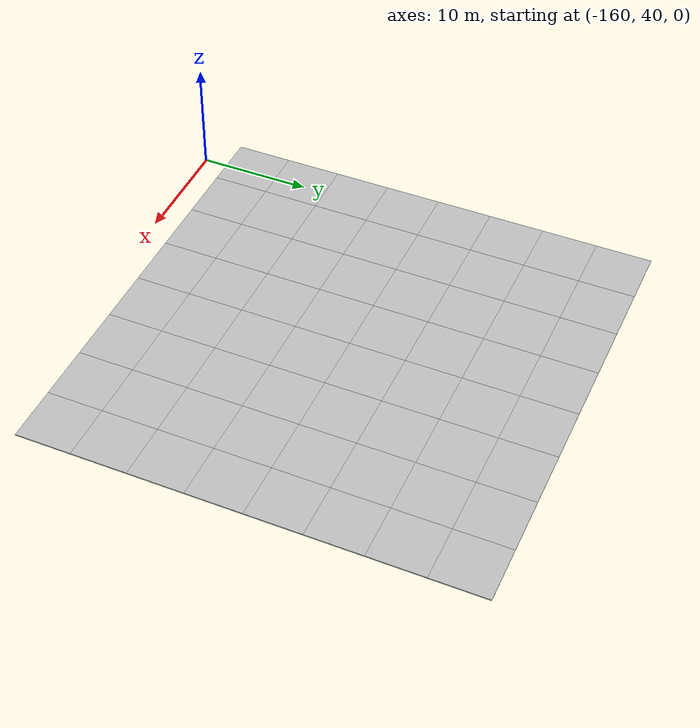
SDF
<sdf version="1.7">
 <world name="default">
  <model name="mud_plane_80x80_3">
   <model name="mud_plane_40x40_1">
    <model name="mud_plane_20x20">
     <model name="mud_plane">
      <static>1</static>
      <link name="link">
       <collision name="collision"><geometry><box><size>10 10 0.1</size></box></geometry></collision>
       <visual name="visual_1">
        <pose>-2.5 2.5 -0.05 0 -0 0</pose>
        <cast_shadows>0</cast_shadows>
        <geometry><box><size>5 5 0.1</size></box></geometry>
        <material>
         <script>
          <uri>model://mud_plane/materials/scripts</uri>
          <uri>model://mud_plane/materials/textures</uri>
          <name>vrc/mud</name>
         </script>
        </material>
       </visual>
       <visual name="visual_2">
        <pose>2.5 2.5 -0.05 0 -0 0</pose>
        <cast_shadows>0</cast_shadows>
        <geometry><box><size>5 5 0.1</size></box></geometry>
        <material>
         <script>
          <uri>model://mud_plane/materials/scripts</uri>
          <uri>model://mud_plane/materials/textures</uri>
          <name>vrc/mud</name>
         </script>
        </material>
       </visual>
       <visual name="visual_3">
        <pose>2.5 -2.5 -0.05 0 -0 0</pose>
        <cast_shadows>0</cast_shadows>
        <geometry><box><size>5 5 0.1</size></box></geometry>
        <material>
         <script>
          <uri>model://mud_plane/materials/scripts</uri>
          <uri>model://mud_plane/materials/textures</uri>
          <name>vrc/mud</name>
         </script>
        </material>
       </visual>
       <visual name="visual_4">
        <pose>-2.5 -2.5 -0.05 0 -0 0</pose>
        <cast_shadows>0</cast_shadows>
        <geometry><box><size>5 5 0.1</size></box></geometry>
        <material>
         <script>
          <uri>model://mud_plane/materials/scripts</uri>
          <uri>model://mud_plane/materials/textures</uri>
          <name>vrc/mud</name>
         </script>
        </material>
       </visual>
      </link>
      <pose>-4.99986 -4.99991 0 0 -0 0</pose>
     </model>
     <model name="mud_plane_0">
      <static>1</static>
      <link name="link">
       <collision name="collision"><geometry><box><size>10 10 0.1</size></box></geometry></collision>
       <visual name="visual_1">
        <pose>-2.5 2.5 -0.05 0 -0 0</pose>
        <cast_shadows>0</cast_shadows>
        <geometry><box><size>5 5 0.1</size></box></geometry>
        <material>
         <script>
          <uri>model://mud_plane/materials/scripts</uri>
          <uri>model://mud_plane/materials/textures</uri>
          <name>vrc/mud</name>
         </script>
        </material>
       </visual>
       <visual name="visual_2">
        <pose>2.5 2.5 -0.05 0 -0 0</pose>
        <cast_shadows>0</cast_shadows>
        <geometry><box><size>5 5 0.1</size></box></geometry>
        <material>
         <script>
          <uri>model://mud_plane/materials/scripts</uri>
          <uri>model://mud_plane/materials/textures</uri>
          <name>vrc/mud</name>
         </script>
        </material>
       </visual>
       <visual name="visual_3">
        <pose>2.5 -2.5 -0.05 0 -0 0</pose>
        <cast_shadows>0</cast_shadows>
        <geometry><box><size>5 5 0.1</size></box></geometry>
        <material>
         <script>
          <uri>model://mud_plane/materials/scripts</uri>
          <uri>model://mud_plane/materials/textures</uri>
          <name>vrc/mud</name>
         </script>
        </material>
       </visual>
       <visual name="visual_4">
        <pose>-2.5 -2.5 -0.05 0 -0 0</pose>
        <cast_shadows>0</cast_shadows>
        <geometry><box><size>5 5 0.1</size></box></geometry>
        <material>
         <script>
          <uri>model://mud_plane/materials/scripts</uri>
          <uri>model://mud_plane/materials/textures</uri>
          <name>vrc/mud</name>
         </script>
        </material>
       </visual>
      </link>
      <pose>-4.99946 4.99954 0 0 -0 0</pose>
     </model>
     <model name="mud_plane_1">
      <static>1</static>
      <link name="link">
       <collision name="collision"><geometry><box><size>10 10 0.1</size></box></geometry></collision>
       <visual name="visual_1">
        <pose>-2.5 2.5 -0.05 0 -0 0</pose>
        <cast_shadows>0</cast_shadows>
        <geometry><box><size>5 5 0.1</size></box></geometry>
        <material>
         <script>
          <uri>model://mud_plane/materials/scripts</uri>
          <uri>model://mud_plane/materials/textures</uri>
          <name>vrc/mud</name>
         </script>
        </material>
       </visual>
       <visual name="visual_2">
        <pose>2.5 2.5 -0.05 0 -0 0</pose>
        <cast_shadows>0</cast_shadows>
        <geometry><box><size>5 5 0.1</size></box></geometry>
        <material>
         <script>
          <uri>model://mud_plane/materials/scripts</uri>
          <uri>model://mud_plane/materials/textures</uri>
          <name>vrc/mud</name>
         </script>
        </material>
       </visual>
       <visual name="visual_3">
        <pose>2.5 -2.5 -0.05 0 -0 0</pose>
        <cast_shadows>0</cast_shadows>
        <geometry><box><size>5 5 0.1</size></box></geometry>
        <material>
         <script>
          <uri>model://mud_plane/materials/scripts</uri>
          <uri>model://mud_plane/materials/textures</uri>
          <name>vrc/mud</name>
         </script>
        </material>
       </visual>
       <visual name="visual_4">
        <pose>-2.5 -2.5 -0.05 0 -0 0</pose>
        <cast_shadows>0</cast_shadows>
        <geometry><box><size>5 5 0.1</size></box></geometry>
        <material>
         <script>
          <uri>model://mud_plane/materials/scripts</uri>
          <uri>model://mud_plane/materials/textures</uri>
          <name>vrc/mud</name>
         </script>
        </material>
       </visual>
      </link>
      <pose>4.99964 -4.99949 0 0 -0 0</pose>
     </model>
     <model name="mud_plane_2">
      <static>1</static>
      <link name="link">
       <collision name="collision"><geometry><box><size>10 10 0.1</size></box></geometry></collision>
       <visual name="visual_1">
        <pose>-2.5 2.5 -0.05 0 -0 0</pose>
        <cast_shadows>0</cast_shadows>
        <geometry><box><size>5 5 0.1</size></box></geometry>
        <material>
         <script>
          <uri>model://mud_plane/materials/scripts</uri>
          <uri>model://mud_plane/materials/textures</uri>
          <name>vrc/mud</name>
         </script>
        </material>
       </visual>
       <visual name="visual_2">
        <pose>2.5 2.5 -0.05 0 -0 0</pose>
        <cast_shadows>0</cast_shadows>
        <geometry><box><size>5 5 0.1</size></box></geometry>
        <material>
         <script>
          <uri>model://mud_plane/materials/scripts</uri>
          <uri>model://mud_plane/materials/textures</uri>
          <name>vrc/mud</name>
         </script>
        </material>
       </visual>
       <visual name="visual_3">
        <pose>2.5 -2.5 -0.05 0 -0 0</pose>
        <cast_shadows>0</cast_shadows>
        <geometry><box><size>5 5 0.1</size></box></geometry>
        <material>
         <script>
          <uri>model://mud_plane/materials/scripts</uri>
          <uri>model://mud_plane/materials/textures</uri>
          <name>vrc/mud</name>
         </script>
        </material>
       </visual>
       <visual name="visual_4">
        <pose>-2.5 -2.5 -0.05 0 -0 0</pose>
        <cast_shadows>0</cast_shadows>
        <geometry><box><size>5 5 0.1</size></box></geometry>
        <material>
         <script>
          <uri>model://mud_plane/materials/scripts</uri>
          <uri>model://mud_plane/materials/textures</uri>
          <name>vrc/mud</name>
         </script>
        </material>
       </visual>
      </link>
      <pose>4.99967 4.99986 0 0 -0 0</pose>
     </model>
     <static>0</static>
     <pose>-9.99895 9.99843 0 0 -0 0</pose>
    </model>
    <model name="mud_plane_20x20_0">
     <model name="mud_plane">
      <static>1</static>
      <link name="link">
       <collision name="collision"><geometry><box><size>10 10 0.1</size></box></geometry></collision>
       <visual name="visual_1">
        <pose>-2.5 2.5 -0.05 0 -0 0</pose>
        <cast_shadows>0</cast_shadows>
        <geometry><box><size>5 5 0.1</size></box></geometry>
        <material>
         <script>
          <uri>model://mud_plane/materials/scripts</uri>
          <uri>model://mud_plane/materials/textures</uri>
          <name>vrc/mud</name>
         </script>
        </material>
       </visual>
       <visual name="visual_2">
        <pose>2.5 2.5 -0.05 0 -0 0</pose>
        <cast_shadows>0</cast_shadows>
        <geometry><box><size>5 5 0.1</size></box></geometry>
        <material>
         <script>
          <uri>model://mud_plane/materials/scripts</uri>
          <uri>model://mud_plane/materials/textures</uri>
          <name>vrc/mud</name>
         </script>
        </material>
       </visual>
       <visual name="visual_3">
        <pose>2.5 -2.5 -0.05 0 -0 0</pose>
        <cast_shadows>0</cast_shadows>
        <geometry><box><size>5 5 0.1</size></box></geometry>
        <material>
         <script>
          <uri>model://mud_plane/materials/scripts</uri>
          <uri>model://mud_plane/materials/textures</uri>
          <name>vrc/mud</name>
         </script>
        </material>
       </visual>
       <visual name="visual_4">
        <pose>-2.5 -2.5 -0.05 0 -0 0</pose>
        <cast_shadows>0</cast_shadows>
        <geometry><box><size>5 5 0.1</size></box></geometry>
        <material>
         <script>
          <uri>model://mud_plane/materials/scripts</uri>
          <uri>model://mud_plane/materials/textures</uri>
          <name>vrc/mud</name>
         </script>
        </material>
       </visual>
      </link>
      <pose>-4.99986 -4.99991 0 0 -0 0</pose>
     </model>
     <model name="mud_plane_0">
      <static>1</static>
      <link name="link">
       <collision name="collision"><geometry><box><size>10 10 0.1</size></box></geometry></collision>
       <visual name="visual_1">
        <pose>-2.5 2.5 -0.05 0 -0 0</pose>
        <cast_shadows>0</cast_shadows>
        <geometry><box><size>5 5 0.1</size></box></geometry>
        <material>
         <script>
          <uri>model://mud_plane/materials/scripts</uri>
          <uri>model://mud_plane/materials/textures</uri>
          <name>vrc/mud</name>
         </script>
        </material>
       </visual>
       <visual name="visual_2">
        <pose>2.5 2.5 -0.05 0 -0 0</pose>
        <cast_shadows>0</cast_shadows>
        <geometry><box><size>5 5 0.1</size></box></geometry>
        <material>
         <script>
          <uri>model://mud_plane/materials/scripts</uri>
          <uri>model://mud_plane/materials/textures</uri>
          <name>vrc/mud</name>
         </script>
        </material>
       </visual>
       <visual name="visual_3">
        <pose>2.5 -2.5 -0.05 0 -0 0</pose>
        <cast_shadows>0</cast_shadows>
        <geometry><box><size>5 5 0.1</size></box></geometry>
        <material>
         <script>
          <uri>model://mud_plane/materials/scripts</uri>
          <uri>model://mud_plane/materials/textures</uri>
          <name>vrc/mud</name>
         </script>
        </material>
       </visual>
       <visual name="visual_4">
        <pose>-2.5 -2.5 -0.05 0 -0 0</pose>
        <cast_shadows>0</cast_shadows>
        <geometry><box><size>5 5 0.1</size></box></geometry>
        <material>
         <script>
          <uri>model://mud_plane/materials/scripts</uri>
          <uri>model://mud_plane/materials/textures</uri>
          <name>vrc/mud</name>
         </script>
        </material>
       </visual>
      </link>
      <pose>-4.99946 4.99954 0 0 -0 0</pose>
     </model>
     <model name="mud_plane_1">
      <static>1</static>
      <link name="link">
       <collision name="collision"><geometry><box><size>10 10 0.1</size></box></geometry></collision>
       <visual name="visual_1">
        <pose>-2.5 2.5 -0.05 0 -0 0</pose>
        <cast_shadows>0</cast_shadows>
        <geometry><box><size>5 5 0.1</size></box></geometry>
        <material>
         <script>
          <uri>model://mud_plane/materials/scripts</uri>
          <uri>model://mud_plane/materials/textures</uri>
          <name>vrc/mud</name>
         </script>
        </material>
       </visual>
       <visual name="visual_2">
        <pose>2.5 2.5 -0.05 0 -0 0</pose>
        <cast_shadows>0</cast_shadows>
        <geometry><box><size>5 5 0.1</size></box></geometry>
        <material>
         <script>
          <uri>model://mud_plane/materials/scripts</uri>
          <uri>model://mud_plane/materials/textures</uri>
          <name>vrc/mud</name>
         </script>
        </material>
       </visual>
       <visual name="visual_3">
        <pose>2.5 -2.5 -0.05 0 -0 0</pose>
        <cast_shadows>0</cast_shadows>
        <geometry><box><size>5 5 0.1</size></box></geometry>
        <material>
         <script>
          <uri>model://mud_plane/materials/scripts</uri>
          <uri>model://mud_plane/materials/textures</uri>
          <name>vrc/mud</name>
         </script>
        </material>
       </visual>
       <visual name="visual_4">
        <pose>-2.5 -2.5 -0.05 0 -0 0</pose>
        <cast_shadows>0</cast_shadows>
        <geometry><box><size>5 5 0.1</size></box></geometry>
        <material>
         <script>
          <uri>model://mud_plane/materials/scripts</uri>
          <uri>model://mud_plane/materials/textures</uri>
          <name>vrc/mud</name>
         </script>
        </material>
       </visual>
      </link>
      <pose>4.99964 -4.99949 0 0 -0 0</pose>
     </model>
     <model name="mud_plane_2">
      <static>1</static>
      <link name="link">
       <collision name="collision"><geometry><box><size>10 10 0.1</size></box></geometry></collision>
       <visual name="visual_1">
        <pose>-2.5 2.5 -0.05 0 -0 0</pose>
        <cast_shadows>0</cast_shadows>
        <geometry><box><size>5 5 0.1</size></box></geometry>
        <material>
         <script>
          <uri>model://mud_plane/materials/scripts</uri>
          <uri>model://mud_plane/materials/textures</uri>
          <name>vrc/mud</name>
         </script>
        </material>
       </visual>
       <visual name="visual_2">
        <pose>2.5 2.5 -0.05 0 -0 0</pose>
        <cast_shadows>0</cast_shadows>
        <geometry><box><size>5 5 0.1</size></box></geometry>
        <material>
         <script>
          <uri>model://mud_plane/materials/scripts</uri>
          <uri>model://mud_plane/materials/textures</uri>
          <name>vrc/mud</name>
         </script>
        </material>
       </visual>
       <visual name="visual_3">
        <pose>2.5 -2.5 -0.05 0 -0 0</pose>
        <cast_shadows>0</cast_shadows>
        <geometry><box><size>5 5 0.1</size></box></geometry>
        <material>
         <script>
          <uri>model://mud_plane/materials/scripts</uri>
          <uri>model://mud_plane/materials/textures</uri>
          <name>vrc/mud</name>
         </script>
        </material>
       </visual>
       <visual name="visual_4">
        <pose>-2.5 -2.5 -0.05 0 -0 0</pose>
        <cast_shadows>0</cast_shadows>
        <geometry><box><size>5 5 0.1</size></box></geometry>
        <material>
         <script>
          <uri>model://mud_plane/materials/scripts</uri>
          <uri>model://mud_plane/materials/textures</uri>
          <name>vrc/mud</name>
         </script>
        </material>
       </visual>
      </link>
      <pose>4.99967 4.99986 0 0 -0 0</pose>
     </model>
     <static>0</static>
     <pose>9.99933 9.9997 0 0 -0 0</pose>
    </model>
    <model name="mud_plane_20x20_1">
     <model name="mud_plane">
      <static>1</static>
      <link name="link">
       <collision name="collision"><geometry><box><size>10 10 0.1</size></box></geometry></collision>
       <visual name="visual_1">
        <pose>-2.5 2.5 -0.05 0 -0 0</pose>
        <cast_shadows>0</cast_shadows>
        <geometry><box><size>5 5 0.1</size></box></geometry>
        <material>
         <script>
          <uri>model://mud_plane/materials/scripts</uri>
          <uri>model://mud_plane/materials/textures</uri>
          <name>vrc/mud</name>
         </script>
        </material>
       </visual>
       <visual name="visual_2">
        <pose>2.5 2.5 -0.05 0 -0 0</pose>
        <cast_shadows>0</cast_shadows>
        <geometry><box><size>5 5 0.1</size></box></geometry>
        <material>
         <script>
          <uri>model://mud_plane/materials/scripts</uri>
          <uri>model://mud_plane/materials/textures</uri>
          <name>vrc/mud</name>
         </script>
        </material>
       </visual>
       <visual name="visual_3">
        <pose>2.5 -2.5 -0.05 0 -0 0</pose>
        <cast_shadows>0</cast_shadows>
        <geometry><box><size>5 5 0.1</size></box></geometry>
        <material>
         <script>
          <uri>model://mud_plane/materials/scripts</uri>
          <uri>model://mud_plane/materials/textures</uri>
          <name>vrc/mud</name>
         </script>
        </material>
       </visual>
       <visual name="visual_4">
        <pose>-2.5 -2.5 -0.05 0 -0 0</pose>
        <cast_shadows>0</cast_shadows>
        <geometry><box><size>5 5 0.1</size></box></geometry>
        <material>
         <script>
          <uri>model://mud_plane/materials/scripts</uri>
          <uri>model://mud_plane/materials/textures</uri>
          <name>vrc/mud</name>
         </script>
        </material>
       </visual>
      </link>
      <pose>-4.99986 -4.99991 0 0 -0 0</pose>
     </model>
     <model name="mud_plane_0">
      <static>1</static>
      <link name="link">
       <collision name="collision"><geometry><box><size>10 10 0.1</size></box></geometry></collision>
       <visual name="visual_1">
        <pose>-2.5 2.5 -0.05 0 -0 0</pose>
        <cast_shadows>0</cast_shadows>
        <geometry><box><size>5 5 0.1</size></box></geometry>
        <material>
         <script>
          <uri>model://mud_plane/materials/scripts</uri>
          <uri>model://mud_plane/materials/textures</uri>
          <name>vrc/mud</name>
         </script>
        </material>
       </visual>
       <visual name="visual_2">
        <pose>2.5 2.5 -0.05 0 -0 0</pose>
        <cast_shadows>0</cast_shadows>
        <geometry><box><size>5 5 0.1</size></box></geometry>
        <material>
         <script>
          <uri>model://mud_plane/materials/scripts</uri>
          <uri>model://mud_plane/materials/textures</uri>
          <name>vrc/mud</name>
         </script>
        </material>
       </visual>
       <visual name="visual_3">
        <pose>2.5 -2.5 -0.05 0 -0 0</pose>
        <cast_shadows>0</cast_shadows>
        <geometry><box><size>5 5 0.1</size></box></geometry>
        <material>
         <script>
          <uri>model://mud_plane/materials/scripts</uri>
          <uri>model://mud_plane/materials/textures</uri>
          <name>vrc/mud</name>
         </script>
        </material>
       </visual>
       <visual name="visual_4">
        <pose>-2.5 -2.5 -0.05 0 -0 0</pose>
        <cast_shadows>0</cast_shadows>
        <geometry><box><size>5 5 0.1</size></box></geometry>
        <material>
         <script>
          <uri>model://mud_plane/materials/scripts</uri>
          <uri>model://mud_plane/materials/textures</uri>
          <name>vrc/mud</name>
         </script>
        </material>
       </visual>
      </link>
      <pose>-4.99946 4.99954 0 0 -0 0</pose>
     </model>
     <model name="mud_plane_1">
      <static>1</static>
      <link name="link">
       <collision name="collision"><geometry><box><size>10 10 0.1</size></box></geometry></collision>
       <visual name="visual_1">
        <pose>-2.5 2.5 -0.05 0 -0 0</pose>
        <cast_shadows>0</cast_shadows>
        <geometry><box><size>5 5 0.1</size></box></geometry>
        <material>
         <script>
          <uri>model://mud_plane/materials/scripts</uri>
          <uri>model://mud_plane/materials/textures</uri>
          <name>vrc/mud</name>
         </script>
        </material>
       </visual>
       <visual name="visual_2">
        <pose>2.5 2.5 -0.05 0 -0 0</pose>
        <cast_shadows>0</cast_shadows>
        <geometry><box><size>5 5 0.1</size></box></geometry>
        <material>
         <script>
          <uri>model://mud_plane/materials/scripts</uri>
          <uri>model://mud_plane/materials/textures</uri>
          <name>vrc/mud</name>
         </script>
        </material>
       </visual>
       <visual name="visual_3">
        <pose>2.5 -2.5 -0.05 0 -0 0</pose>
        <cast_shadows>0</cast_shadows>
        <geometry><box><size>5 5 0.1</size></box></geometry>
        <material>
         <script>
          <uri>model://mud_plane/materials/scripts</uri>
          <uri>model://mud_plane/materials/textures</uri>
          <name>vrc/mud</name>
         </script>
        </material>
       </visual>
       <visual name="visual_4">
        <pose>-2.5 -2.5 -0.05 0 -0 0</pose>
        <cast_shadows>0</cast_shadows>
        <geometry><box><size>5 5 0.1</size></box></geometry>
        <material>
         <script>
          <uri>model://mud_plane/materials/scripts</uri>
          <uri>model://mud_plane/materials/textures</uri>
          <name>vrc/mud</name>
         </script>
        </material>
       </visual>
      </link>
      <pose>4.99964 -4.99949 0 0 -0 0</pose>
     </model>
     <model name="mud_plane_2">
      <static>1</static>
      <link name="link">
       <collision name="collision"><geometry><box><size>10 10 0.1</size></box></geometry></collision>
       <visual name="visual_1">
        <pose>-2.5 2.5 -0.05 0 -0 0</pose>
        <cast_shadows>0</cast_shadows>
        <geometry><box><size>5 5 0.1</size></box></geometry>
        <material>
         <script>
          <uri>model://mud_plane/materials/scripts</uri>
          <uri>model://mud_plane/materials/textures</uri>
          <name>vrc/mud</name>
         </script>
        </material>
       </visual>
       <visual name="visual_2">
        <pose>2.5 2.5 -0.05 0 -0 0</pose>
        <cast_shadows>0</cast_shadows>
        <geometry><box><size>5 5 0.1</size></box></geometry>
        <material>
         <script>
          <uri>model://mud_plane/materials/scripts</uri>
          <uri>model://mud_plane/materials/textures</uri>
          <name>vrc/mud</name>
         </script>
        </material>
       </visual>
       <visual name="visual_3">
        <pose>2.5 -2.5 -0.05 0 -0 0</pose>
        <cast_shadows>0</cast_shadows>
        <geometry><box><size>5 5 0.1</size></box></geometry>
        <material>
         <script>
          <uri>model://mud_plane/materials/scripts</uri>
          <uri>model://mud_plane/materials/textures</uri>
          <name>vrc/mud</name>
         </script>
        </material>
       </visual>
       <visual name="visual_4">
        <pose>-2.5 -2.5 -0.05 0 -0 0</pose>
        <cast_shadows>0</cast_shadows>
        <geometry><box><size>5 5 0.1</size></box></geometry>
        <material>
         <script>
          <uri>model://mud_plane/materials/scripts</uri>
          <uri>model://mud_plane/materials/textures</uri>
          <name>vrc/mud</name>
         </script>
        </material>
       </visual>
      </link>
      <pose>4.99967 4.99986 0 0 -0 0</pose>
     </model>
     <static>0</static>
     <pose>9.9993 -9.99877 0 0 -0 0</pose>
    </model>
    <model name="mud_plane_20x20_2">
     <model name="mud_plane">
      <static>1</static>
      <link name="link">
       <collision name="collision"><geometry><box><size>10 10 0.1</size></box></geometry></collision>
       <visual name="visual_1">
        <pose>-2.5 2.5 -0.05 0 -0 0</pose>
        <cast_shadows>0</cast_shadows>
        <geometry><box><size>5 5 0.1</size></box></geometry>
        <material>
         <script>
          <uri>model://mud_plane/materials/scripts</uri>
          <uri>model://mud_plane/materials/textures</uri>
          <name>vrc/mud</name>
         </script>
        </material>
       </visual>
       <visual name="visual_2">
        <pose>2.5 2.5 -0.05 0 -0 0</pose>
        <cast_shadows>0</cast_shadows>
        <geometry><box><size>5 5 0.1</size></box></geometry>
        <material>
         <script>
          <uri>model://mud_plane/materials/scripts</uri>
          <uri>model://mud_plane/materials/textures</uri>
          <name>vrc/mud</name>
         </script>
        </material>
       </visual>
       <visual name="visual_3">
        <pose>2.5 -2.5 -0.05 0 -0 0</pose>
        <cast_shadows>0</cast_shadows>
        <geometry><box><size>5 5 0.1</size></box></geometry>
        <material>
         <script>
          <uri>model://mud_plane/materials/scripts</uri>
          <uri>model://mud_plane/materials/textures</uri>
          <name>vrc/mud</name>
         </script>
        </material>
       </visual>
       <visual name="visual_4">
        <pose>-2.5 -2.5 -0.05 0 -0 0</pose>
        <cast_shadows>0</cast_shadows>
        <geometry><box><size>5 5 0.1</size></box></geometry>
        <material>
         <script>
          <uri>model://mud_plane/materials/scripts</uri>
          <uri>model://mud_plane/materials/textures</uri>
          <name>vrc/mud</name>
         </script>
        </material>
       </visual>
      </link>
      <pose>-4.99986 -4.99991 0 0 -0 0</pose>
     </model>
     <model name="mud_plane_0">
      <static>1</static>
      <link name="link">
       <collision name="collision"><geometry><box><size>10 10 0.1</size></box></geometry></collision>
       <visual name="visual_1">
        <pose>-2.5 2.5 -0.05 0 -0 0</pose>
        <cast_shadows>0</cast_shadows>
        <geometry><box><size>5 5 0.1</size></box></geometry>
        <material>
         <script>
          <uri>model://mud_plane/materials/scripts</uri>
          <uri>model://mud_plane/materials/textures</uri>
          <name>vrc/mud</name>
         </script>
        </material>
       </visual>
       <visual name="visual_2">
        <pose>2.5 2.5 -0.05 0 -0 0</pose>
        <cast_shadows>0</cast_shadows>
        <geometry><box><size>5 5 0.1</size></box></geometry>
        <material>
         <script>
          <uri>model://mud_plane/materials/scripts</uri>
          <uri>model://mud_plane/materials/textures</uri>
          <name>vrc/mud</name>
         </script>
        </material>
       </visual>
       <visual name="visual_3">
        <pose>2.5 -2.5 -0.05 0 -0 0</pose>
        <cast_shadows>0</cast_shadows>
        <geometry><box><size>5 5 0.1</size></box></geometry>
        <material>
         <script>
          <uri>model://mud_plane/materials/scripts</uri>
          <uri>model://mud_plane/materials/textures</uri>
          <name>vrc/mud</name>
         </script>
        </material>
       </visual>
       <visual name="visual_4">
        <pose>-2.5 -2.5 -0.05 0 -0 0</pose>
        <cast_shadows>0</cast_shadows>
        <geometry><box><size>5 5 0.1</size></box></geometry>
        <material>
         <script>
          <uri>model://mud_plane/materials/scripts</uri>
          <uri>model://mud_plane/materials/textures</uri>
          <name>vrc/mud</name>
         </script>
        </material>
       </visual>
      </link>
      <pose>-4.99946 4.99954 0 0 -0 0</pose>
     </model>
     <model name="mud_plane_1">
      <static>1</static>
      <link name="link">
       <collision name="collision"><geometry><box><size>10 10 0.1</size></box></geometry></collision>
       <visual name="visual_1">
        <pose>-2.5 2.5 -0.05 0 -0 0</pose>
        <cast_shadows>0</cast_shadows>
        <geometry><box><size>5 5 0.1</size></box></geometry>
        <material>
         <script>
          <uri>model://mud_plane/materials/scripts</uri>
          <uri>model://mud_plane/materials/textures</uri>
          <name>vrc/mud</name>
         </script>
        </material>
       </visual>
       <visual name="visual_2">
        <pose>2.5 2.5 -0.05 0 -0 0</pose>
        <cast_shadows>0</cast_shadows>
        <geometry><box><size>5 5 0.1</size></box></geometry>
        <material>
         <script>
          <uri>model://mud_plane/materials/scripts</uri>
          <uri>model://mud_plane/materials/textures</uri>
          <name>vrc/mud</name>
         </script>
        </material>
       </visual>
       <visual name="visual_3">
        <pose>2.5 -2.5 -0.05 0 -0 0</pose>
        <cast_shadows>0</cast_shadows>
        <geometry><box><size>5 5 0.1</size></box></geometry>
        <material>
         <script>
          <uri>model://mud_plane/materials/scripts</uri>
          <uri>model://mud_plane/materials/textures</uri>
          <name>vrc/mud</name>
         </script>
        </material>
       </visual>
       <visual name="visual_4">
        <pose>-2.5 -2.5 -0.05 0 -0 0</pose>
        <cast_shadows>0</cast_shadows>
        <geometry><box><size>5 5 0.1</size></box></geometry>
        <material>
         <script>
          <uri>model://mud_plane/materials/scripts</uri>
          <uri>model://mud_plane/materials/textures</uri>
          <name>vrc/mud</name>
         </script>
        </material>
       </visual>
      </link>
      <pose>4.99964 -4.99949 0 0 -0 0</pose>
     </model>
     <model name="mud_plane_2">
      <static>1</static>
      <link name="link">
       <collision name="collision"><geometry><box><size>10 10 0.1</size></box></geometry></collision>
       <visual name="visual_1">
        <pose>-2.5 2.5 -0.05 0 -0 0</pose>
        <cast_shadows>0</cast_shadows>
        <geometry><box><size>5 5 0.1</size></box></geometry>
        <material>
         <script>
          <uri>model://mud_plane/materials/scripts</uri>
          <uri>model://mud_plane/materials/textures</uri>
          <name>vrc/mud</name>
         </script>
        </material>
       </visual>
       <visual name="visual_2">
        <pose>2.5 2.5 -0.05 0 -0 0</pose>
        <cast_shadows>0</cast_shadows>
        <geometry><box><size>5 5 0.1</size></box></geometry>
        <material>
         <script>
          <uri>model://mud_plane/materials/scripts</uri>
          <uri>model://mud_plane/materials/textures</uri>
          <name>vrc/mud</name>
         </script>
        </material>
       </visual>
       <visual name="visual_3">
        <pose>2.5 -2.5 -0.05 0 -0 0</pose>
        <cast_shadows>0</cast_shadows>
        <geometry><box><size>5 5 0.1</size></box></geometry>
        <material>
         <script>
          <uri>model://mud_plane/materials/scripts</uri>
          <uri>model://mud_plane/materials/textures</uri>
          <name>vrc/mud</name>
         </script>
        </material>
       </visual>
       <visual name="visual_4">
        <pose>-2.5 -2.5 -0.05 0 -0 0</pose>
        <cast_shadows>0</cast_shadows>
        <geometry><box><size>5 5 0.1</size></box></geometry>
        <material>
         <script>
          <uri>model://mud_plane/materials/scripts</uri>
          <uri>model://mud_plane/materials/textures</uri>
          <name>vrc/mud</name>
         </script>
        </material>
       </visual>
      </link>
      <pose>4.99967 4.99986 0 0 -0 0</pose>
     </model>
     <static>0</static>
     <pose>-9.99969 -9.99935 0 0 -0 0</pose>
    </model>
    <static>0</static>
    <pose>-19.9982 19.9977 0 0 -0 0</pose>
   </model>
   <static>0</static>
   <pose>-123.082 42.0534 0 0 -0 0</pose>
  </model>
 </world>
</sdf>
